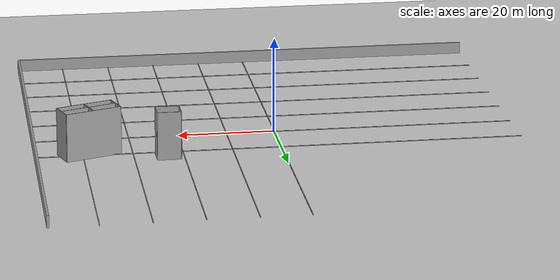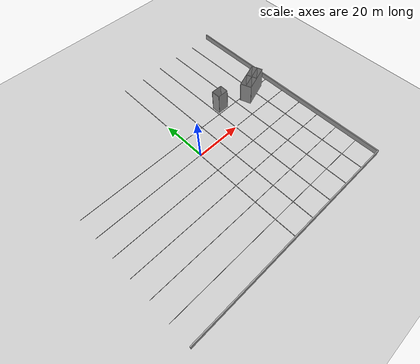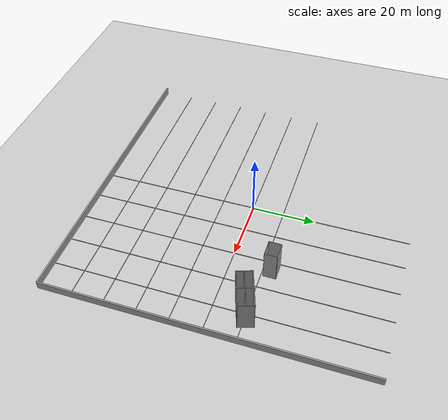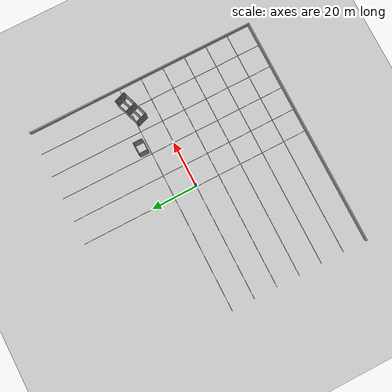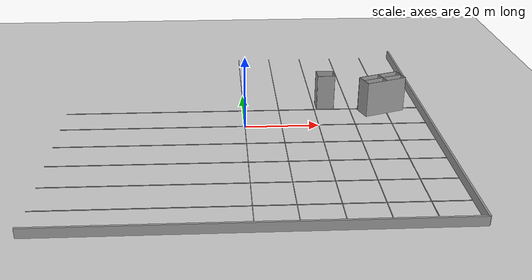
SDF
<sdf version="1.7">
 <world name="default">
  <model name="ground_plane">
   <static>1</static>
   <link name="link">
    <collision name="collision">
     <geometry><plane><normal>0 0 1</normal><size>100 100</size></plane></geometry>
     <surface><friction><ode><mu>100</mu><mu2>50</mu2></ode></friction></surface>
    </collision>
    <visual name="visual">
     <cast_shadows>0</cast_shadows>
     <geometry><plane><normal>0 0 1</normal><size>100 100</size></plane></geometry>
     <material>
      <script><uri>file://media/materials/scripts/gazebo.material</uri><name>Gazebo/Grey</name></script>
     </material>
    </visual>
   </link>
  </model>
  <model name="gridline100m">
   <pose>0.007876 -6.97538 0 0 -0 0</pose>
   <link name="Wall_2">
    <collision name="Wall_2_Collision">
     <geometry><box><size>100 0.15 0.15</size></box></geometry>
     <pose>0 0 0.075 0 -0 0</pose>
    </collision>
    <visual name="Wall_2_Visual">
     <pose>0 0 0.075 0 -0 0</pose>
     <geometry><box><size>100 0.15 0.15</size></box></geometry>
     <material>
      <script><uri>file://media/materials/scripts/gazebo.material</uri><name>Gazebo/Grey</name></script>
      <ambient>0 0 0 1</ambient>
     </material>
     <meta><layer>0</layer></meta>
    </visual>
    <pose>2e-06 -3.05812 0 0 -0 0</pose>
   </link>
   <static>1</static>
  </model>
  <model name="gridline100m_clone">
   <pose>0.013 3.08479 0 0 -0 0</pose>
   <link name="Wall_2">
    <collision name="Wall_2_Collision">
     <geometry><box><size>100 0.15 0.15</size></box></geometry>
     <pose>0 0 0.075 0 -0 0</pose>
    </collision>
    <visual name="Wall_2_Visual">
     <pose>0 0 0.075 0 -0 0</pose>
     <geometry><box><size>100 0.15 0.15</size></box></geometry>
     <material>
      <script><uri>file://media/materials/scripts/gazebo.material</uri><name>Gazebo/Grey</name></script>
      <ambient>0 0 0 1</ambient>
     </material>
     <meta><layer>0</layer></meta>
    </visual>
    <pose>2e-06 -3.05812 0 0 -0 0</pose>
   </link>
   <static>1</static>
  </model>
  <model name="gridline100m_clone_0">
   <pose>-0.011254 13.0129 0 0 -0 0</pose>
   <link name="Wall_2">
    <collision name="Wall_2_Collision">
     <geometry><box><size>100 0.15 0.15</size></box></geometry>
     <pose>0 0 0.075 0 -0 0</pose>
    </collision>
    <visual name="Wall_2_Visual">
     <pose>0 0 0.075 0 -0 0</pose>
     <geometry><box><size>100 0.15 0.15</size></box></geometry>
     <material>
      <script><uri>file://media/materials/scripts/gazebo.material</uri><name>Gazebo/Grey</name></script>
      <ambient>0 0 0 1</ambient>
     </material>
     <meta><layer>0</layer></meta>
    </visual>
    <pose>2e-06 -3.05812 0 0 -0 0</pose>
   </link>
   <static>1</static>
  </model>
  <model name="gridline100m_clone_0_clone">
   <link name="Wall_2">
    <pose>2e-06 -3.05812 0 0 -0 1.571</pose>
    <inertial>
     <mass>1</mass>
     <inertia><ixx>1</ixx><ixy>0</ixy><ixz>0</ixz><iyy>1</iyy><iyz>0</iyz><izz>1</izz></inertia>
    </inertial>
    <visual name="Wall_2_Visual">
     <pose>0 0 0.075 0 -0 0</pose>
     <geometry><box><size>100 0.15 0.15</size></box></geometry>
     <material>
      <script><uri>file://media/materials/scripts/gazebo.material</uri><name>Gazebo/Grey</name></script>
      <ambient>0 0 0 1</ambient>
      <shader type="pixel"><normal_map>__default__</normal_map></shader>
      <diffuse>0.7 0.7 0.7 1</diffuse>
      <specular>0.01 0.01 0.01 1</specular>
      <emissive>0 0 0 1</emissive>
     </material>
     <meta><layer>0</layer></meta>
    </visual>
    <collision name="Wall_2_Collision">
     <pose>0 0 0.075 0 -0 0</pose>
     <geometry><box><size>100 0.15 0.15</size></box></geometry>
     <surface>
      <friction>
       <ode><mu>1</mu><mu2>1</mu2><fdir1>0 0 0</fdir1><slip1>0</slip1><slip2>0</slip2></ode>
       <torsional>
        <coefficient>1</coefficient>
        <patch_radius>0</patch_radius>
        <surface_radius>0</surface_radius>
        <use_patch_radius>1</use_patch_radius>
        <ode><slip>0</slip></ode>
       </torsional>
      </friction>
      <bounce><restitution_coefficient>0</restitution_coefficient><threshold>1e+06</threshold></bounce>
      <contact>
       <collide_without_contact>0</collide_without_contact>
       <collide_without_contact_bitmask>1</collide_without_contact_bitmask>
       <collide_bitmask>1</collide_bitmask>
       <ode>
        <soft_cfm>0</soft_cfm>
        <soft_erp>0.2</soft_erp>
        <kp>1e+13</kp>
        <kd>1</kd>
        <max_vel>0.01</max_vel>
        <min_depth>0</min_depth>
       </ode>
       <bullet>
        <split_impulse>1</split_impulse>
        <split_impulse_penetration_threshold>-0.01</split_impulse_penetration_threshold>
        <soft_cfm>0</soft_cfm>
        <soft_erp>0.2</soft_erp>
        <kp>1e+13</kp>
        <kd>1</kd>
       </bullet>
      </contact>
     </surface>
    </collision>
   </link>
   <static>1</static>
   <pose>9.93727 3.17557 0 0 -0 0</pose>
  </model>
  <model name="gridline100m_clone_0_clone_clone">
   <link name="Wall_2">
    <pose>2e-06 -3.05812 0 0 -0 1.571</pose>
    <inertial>
     <mass>1</mass>
     <inertia><ixx>1</ixx><ixy>0</ixy><ixz>0</ixz><iyy>1</iyy><iyz>0</iyz><izz>1</izz></inertia>
    </inertial>
    <visual name="Wall_2_Visual">
     <pose>0 0 0.075 0 -0 0</pose>
     <geometry><box><size>100 0.15 0.15</size></box></geometry>
     <material>
      <script><uri>file://media/materials/scripts/gazebo.material</uri><name>Gazebo/Grey</name></script>
      <ambient>0 0 0 1</ambient>
      <shader type="pixel"><normal_map>__default__</normal_map></shader>
      <diffuse>0.7 0.7 0.7 1</diffuse>
      <specular>0.01 0.01 0.01 1</specular>
      <emissive>0 0 0 1</emissive>
     </material>
     <meta><layer>0</layer></meta>
    </visual>
    <collision name="Wall_2_Collision">
     <pose>0 0 0.075 0 -0 0</pose>
     <geometry><box><size>100 0.15 0.15</size></box></geometry>
     <surface>
      <friction>
       <ode><mu>1</mu><mu2>1</mu2><fdir1>0 0 0</fdir1><slip1>0</slip1><slip2>0</slip2></ode>
       <torsional>
        <coefficient>1</coefficient>
        <patch_radius>0</patch_radius>
        <surface_radius>0</surface_radius>
        <use_patch_radius>1</use_patch_radius>
        <ode><slip>0</slip></ode>
       </torsional>
      </friction>
      <bounce><restitution_coefficient>0</restitution_coefficient><threshold>1e+06</threshold></bounce>
      <contact>
       <collide_without_contact>0</collide_without_contact>
       <collide_without_contact_bitmask>1</collide_without_contact_bitmask>
       <collide_bitmask>1</collide_bitmask>
       <ode>
        <soft_cfm>0</soft_cfm>
        <soft_erp>0.2</soft_erp>
        <kp>1e+13</kp>
        <kd>1</kd>
        <max_vel>0.01</max_vel>
        <min_depth>0</min_depth>
       </ode>
       <bullet>
        <split_impulse>1</split_impulse>
        <split_impulse_penetration_threshold>-0.01</split_impulse_penetration_threshold>
        <soft_cfm>0</soft_cfm>
        <soft_erp>0.2</soft_erp>
        <kp>1e+13</kp>
        <kd>1</kd>
       </bullet>
      </contact>
     </surface>
    </collision>
   </link>
   <static>1</static>
   <pose>-0.08355 3.18147 0 0 -0 0</pose>
  </model>
  <model name="gridline100m_clone_0_clone_clone_1">
   <link name="Wall_2">
    <pose>2e-06 -3.05812 0 0 -0 1.571</pose>
    <inertial>
     <mass>1</mass>
     <inertia><ixx>1</ixx><ixy>0</ixy><ixz>0</ixz><iyy>1</iyy><iyz>0</iyz><izz>1</izz></inertia>
    </inertial>
    <visual name="Wall_2_Visual">
     <pose>0 0 0.075 0 -0 0</pose>
     <geometry><box><size>100 0.15 0.15</size></box></geometry>
     <material>
      <script><uri>file://media/materials/scripts/gazebo.material</uri><name>Gazebo/Grey</name></script>
      <ambient>0 0 0 1</ambient>
      <shader type="pixel"><normal_map>__default__</normal_map></shader>
      <diffuse>0.7 0.7 0.7 1</diffuse>
      <specular>0.01 0.01 0.01 1</specular>
      <emissive>0 0 0 1</emissive>
     </material>
     <meta><layer>0</layer></meta>
    </visual>
    <collision name="Wall_2_Collision">
     <pose>0 0 0.075 0 -0 0</pose>
     <geometry><box><size>100 0.15 0.15</size></box></geometry>
     <surface>
      <friction>
       <ode><mu>1</mu><mu2>1</mu2><fdir1>0 0 0</fdir1><slip1>0</slip1><slip2>0</slip2></ode>
       <torsional>
        <coefficient>1</coefficient>
        <patch_radius>0</patch_radius>
        <surface_radius>0</surface_radius>
        <use_patch_radius>1</use_patch_radius>
        <ode><slip>0</slip></ode>
       </torsional>
      </friction>
      <bounce><restitution_coefficient>0</restitution_coefficient><threshold>1e+06</threshold></bounce>
      <contact>
       <collide_without_contact>0</collide_without_contact>
       <collide_without_contact_bitmask>1</collide_without_contact_bitmask>
       <collide_bitmask>1</collide_bitmask>
       <ode>
        <soft_cfm>0</soft_cfm>
        <soft_erp>0.2</soft_erp>
        <kp>1e+13</kp>
        <kd>1</kd>
        <max_vel>0.01</max_vel>
        <min_depth>0</min_depth>
       </ode>
       <bullet>
        <split_impulse>1</split_impulse>
        <split_impulse_penetration_threshold>-0.01</split_impulse_penetration_threshold>
        <soft_cfm>0</soft_cfm>
        <soft_erp>0.2</soft_erp>
        <kp>1e+13</kp>
        <kd>1</kd>
       </bullet>
      </contact>
     </surface>
    </collision>
   </link>
   <static>1</static>
   <pose>20.1147 3.10463 0 0 -0 0</pose>
  </model>
  <model name="gridline100m_clone_0_clone_clone_1_clone">
   <link name="Wall_2">
    <pose>2e-06 -3.05812 0 0 -0 1.571</pose>
    <inertial>
     <mass>1</mass>
     <inertia><ixx>1</ixx><ixy>0</ixy><ixz>0</ixz><iyy>1</iyy><iyz>0</iyz><izz>1</izz></inertia>
    </inertial>
    <visual name="Wall_2_Visual">
     <pose>0 0 0.075 0 -0 0</pose>
     <geometry><box><size>100 0.15 0.15</size></box></geometry>
     <material>
      <script><uri>file://media/materials/scripts/gazebo.material</uri><name>Gazebo/Grey</name></script>
      <ambient>0 0 0 1</ambient>
      <shader type="pixel"><normal_map>__default__</normal_map></shader>
      <diffuse>0.7 0.7 0.7 1</diffuse>
      <specular>0.01 0.01 0.01 1</specular>
      <emissive>0 0 0 1</emissive>
     </material>
     <meta><layer>0</layer></meta>
    </visual>
    <collision name="Wall_2_Collision">
     <pose>0 0 0.075 0 -0 0</pose>
     <geometry><box><size>100 0.15 0.15</size></box></geometry>
     <surface>
      <friction>
       <ode><mu>1</mu><mu2>1</mu2><fdir1>0 0 0</fdir1><slip1>0</slip1><slip2>0</slip2></ode>
       <torsional>
        <coefficient>1</coefficient>
        <patch_radius>0</patch_radius>
        <surface_radius>0</surface_radius>
        <use_patch_radius>1</use_patch_radius>
        <ode><slip>0</slip></ode>
       </torsional>
      </friction>
      <bounce><restitution_coefficient>0</restitution_coefficient><threshold>1e+06</threshold></bounce>
      <contact>
       <collide_without_contact>0</collide_without_contact>
       <collide_without_contact_bitmask>1</collide_without_contact_bitmask>
       <collide_bitmask>1</collide_bitmask>
       <ode>
        <soft_cfm>0</soft_cfm>
        <soft_erp>0.2</soft_erp>
        <kp>1e+13</kp>
        <kd>1</kd>
        <max_vel>0.01</max_vel>
        <min_depth>0</min_depth>
       </ode>
       <bullet>
        <split_impulse>1</split_impulse>
        <split_impulse_penetration_threshold>-0.01</split_impulse_penetration_threshold>
        <soft_cfm>0</soft_cfm>
        <soft_erp>0.2</soft_erp>
        <kp>1e+13</kp>
        <kd>1</kd>
       </bullet>
      </contact>
     </surface>
    </collision>
   </link>
   <static>1</static>
   <pose>30.2145 3.13489 0 0 -0 0</pose>
  </model>
  <model name="gridline100m_clone_0_clone_clone_1_clone_clone">
   <link name="Wall_2">
    <pose>2e-06 -3.05812 0 0 -0 1.571</pose>
    <inertial>
     <mass>1</mass>
     <inertia><ixx>1</ixx><ixy>0</ixy><ixz>0</ixz><iyy>1</iyy><iyz>0</iyz><izz>1</izz></inertia>
    </inertial>
    <visual name="Wall_2_Visual">
     <pose>0 0 0.075 0 -0 0</pose>
     <geometry><box><size>100 0.15 0.15</size></box></geometry>
     <material>
      <script><uri>file://media/materials/scripts/gazebo.material</uri><name>Gazebo/Grey</name></script>
      <ambient>0 0 0 1</ambient>
      <shader type="pixel"><normal_map>__default__</normal_map></shader>
      <diffuse>0.7 0.7 0.7 1</diffuse>
      <specular>0.01 0.01 0.01 1</specular>
      <emissive>0 0 0 1</emissive>
     </material>
     <meta><layer>0</layer></meta>
    </visual>
    <collision name="Wall_2_Collision">
     <pose>0 0 0.075 0 -0 0</pose>
     <geometry><box><size>100 0.15 0.15</size></box></geometry>
     <surface>
      <friction>
       <ode><mu>1</mu><mu2>1</mu2><fdir1>0 0 0</fdir1><slip1>0</slip1><slip2>0</slip2></ode>
       <torsional>
        <coefficient>1</coefficient>
        <patch_radius>0</patch_radius>
        <surface_radius>0</surface_radius>
        <use_patch_radius>1</use_patch_radius>
        <ode><slip>0</slip></ode>
       </torsional>
      </friction>
      <bounce><restitution_coefficient>0</restitution_coefficient><threshold>1e+06</threshold></bounce>
      <contact>
       <collide_without_contact>0</collide_without_contact>
       <collide_without_contact_bitmask>1</collide_without_contact_bitmask>
       <collide_bitmask>1</collide_bitmask>
       <ode>
        <soft_cfm>0</soft_cfm>
        <soft_erp>0.2</soft_erp>
        <kp>1e+13</kp>
        <kd>1</kd>
        <max_vel>0.01</max_vel>
        <min_depth>0</min_depth>
       </ode>
       <bullet>
        <split_impulse>1</split_impulse>
        <split_impulse_penetration_threshold>-0.01</split_impulse_penetration_threshold>
        <soft_cfm>0</soft_cfm>
        <soft_erp>0.2</soft_erp>
        <kp>1e+13</kp>
        <kd>1</kd>
       </bullet>
      </contact>
     </surface>
    </collision>
   </link>
   <static>1</static>
   <pose>40.3256 3.07649 0 0 -0 0</pose>
  </model>
  <model name="gridline100m_clone_1">
   <pose>-0.046986 -16.9532 0 0 -0 0</pose>
   <link name="Wall_2">
    <collision name="Wall_2_Collision">
     <geometry><box><size>100 0.15 0.15</size></box></geometry>
     <pose>0 0 0.075 0 -0 0</pose>
    </collision>
    <visual name="Wall_2_Visual">
     <pose>0 0 0.075 0 -0 0</pose>
     <geometry><box><size>100 0.15 0.15</size></box></geometry>
     <material>
      <script><uri>file://media/materials/scripts/gazebo.material</uri><name>Gazebo/Grey</name></script>
      <ambient>0 0 0 1</ambient>
     </material>
     <meta><layer>0</layer></meta>
    </visual>
    <pose>2e-06 -3.05812 0 0 -0 0</pose>
   </link>
   <static>1</static>
  </model>
  <model name="gridline100m_clone_1_clone">
   <pose>0.0391 -26.9723 0 0 -0 0</pose>
   <link name="Wall_2">
    <collision name="Wall_2_Collision">
     <geometry><box><size>100 0.15 0.15</size></box></geometry>
     <pose>0 0 0.075 0 -0 0</pose>
    </collision>
    <visual name="Wall_2_Visual">
     <pose>0 0 0.075 0 -0 0</pose>
     <geometry><box><size>100 0.15 0.15</size></box></geometry>
     <material>
      <script><uri>file://media/materials/scripts/gazebo.material</uri><name>Gazebo/Grey</name></script>
      <ambient>0 0 0 1</ambient>
     </material>
     <meta><layer>0</layer></meta>
    </visual>
    <pose>2e-06 -3.05812 0 0 -0 0</pose>
   </link>
   <static>1</static>
  </model>
  <model name="gridline100m_clone_1_clone_clone">
   <pose>-0.033098 -36.9108 0 0 -0 0</pose>
   <link name="Wall_2">
    <collision name="Wall_2_Collision">
     <geometry><box><size>100 0.15 0.15</size></box></geometry>
     <pose>0 0 0.075 0 -0 0</pose>
    </collision>
    <visual name="Wall_2_Visual">
     <pose>0 0 0.075 0 -0 0</pose>
     <geometry><box><size>100 0.15 0.15</size></box></geometry>
     <material>
      <script><uri>file://media/materials/scripts/gazebo.material</uri><name>Gazebo/Grey</name></script>
      <ambient>0 0 0 1</ambient>
     </material>
     <meta><layer>0</layer></meta>
    </visual>
    <pose>2e-06 -3.05812 0 0 -0 0</pose>
   </link>
   <static>1</static>
  </model>
  <model name="building1_clone_0_clone_1">
   <link name="Wall_12">
    <pose>-1.19 -3.2645 0 0 -0 0</pose>
    <inertial>
     <mass>1</mass>
     <inertia><ixx>1</ixx><ixy>0</ixy><ixz>0</ixz><iyy>1</iyy><iyz>0</iyz><izz>1</izz></inertia>
    </inertial>
    <visual name="Wall_12_Visual">
     <pose>0 0 5 0 -0 0</pose>
     <geometry><box><size>5 0.15 10</size></box></geometry>
     <material>
      <script><uri>file://media/materials/scripts/gazebo.material</uri><name>Gazebo/Grey</name></script>
      <ambient>0.5 0.5 0.5 1</ambient>
      <shader type="pixel"><normal_map>__default__</normal_map></shader>
      <diffuse>0.5 0.5 0.5 1</diffuse>
      <specular>0.5 0.5 0.5 1</specular>
      <emissive>0 0 0 1</emissive>
     </material>
     <meta><layer>0</layer></meta>
    </visual>
    <collision name="Wall_12_Collision">
     <pose>0 0 5 0 -0 0</pose>
     <geometry><box><size>5 0.15 10</size></box></geometry>
     <surface>
      <friction>
       <ode><mu>1</mu><mu2>1</mu2><fdir1>0 0 0</fdir1><slip1>0</slip1><slip2>0</slip2></ode>
       <torsional>
        <coefficient>1</coefficient>
        <patch_radius>0</patch_radius>
        <surface_radius>0</surface_radius>
        <use_patch_radius>1</use_patch_radius>
        <ode><slip>0</slip></ode>
       </torsional>
      </friction>
      <bounce><restitution_coefficient>0</restitution_coefficient><threshold>1e+06</threshold></bounce>
      <contact>
       <collide_without_contact>0</collide_without_contact>
       <collide_without_contact_bitmask>1</collide_without_contact_bitmask>
       <collide_bitmask>1</collide_bitmask>
       <ode>
        <soft_cfm>0</soft_cfm>
        <soft_erp>0.2</soft_erp>
        <kp>1e+13</kp>
        <kd>1</kd>
        <max_vel>0.01</max_vel>
        <min_depth>0</min_depth>
       </ode>
       <bullet>
        <split_impulse>1</split_impulse>
        <split_impulse_penetration_threshold>-0.01</split_impulse_penetration_threshold>
        <soft_cfm>0</soft_cfm>
        <soft_erp>0.2</soft_erp>
        <kp>1e+13</kp>
        <kd>1</kd>
       </bullet>
      </contact>
     </surface>
    </collision>
   </link>
   <link name="Wall_13">
    <pose>1.235 -1.3395 0 0 -0 1.5708</pose>
    <inertial>
     <mass>1</mass>
     <inertia><ixx>1</ixx><ixy>0</ixy><ixz>0</ixz><iyy>1</iyy><iyz>0</iyz><izz>1</izz></inertia>
    </inertial>
    <visual name="Wall_13_Visual">
     <pose>0 0 5 0 -0 0</pose>
     <geometry><box><size>4 0.15 10</size></box></geometry>
     <material>
      <script><uri>file://media/materials/scripts/gazebo.material</uri><name>Gazebo/Grey</name></script>
      <ambient>0.5 0.5 0.5 1</ambient>
      <shader type="pixel"><normal_map>__default__</normal_map></shader>
      <diffuse>0.5 0.5 0.5 1</diffuse>
      <specular>0.5 0.5 0.5 1</specular>
      <emissive>0 0 0 1</emissive>
     </material>
     <meta><layer>0</layer></meta>
    </visual>
    <collision name="Wall_13_Collision">
     <pose>0 0 5 0 -0 0</pose>
     <geometry><box><size>4 0.15 10</size></box></geometry>
     <surface>
      <friction>
       <ode><mu>1</mu><mu2>1</mu2><fdir1>0 0 0</fdir1><slip1>0</slip1><slip2>0</slip2></ode>
       <torsional>
        <coefficient>1</coefficient>
        <patch_radius>0</patch_radius>
        <surface_radius>0</surface_radius>
        <use_patch_radius>1</use_patch_radius>
        <ode><slip>0</slip></ode>
       </torsional>
      </friction>
      <bounce><restitution_coefficient>0</restitution_coefficient><threshold>1e+06</threshold></bounce>
      <contact>
       <collide_without_contact>0</collide_without_contact>
       <collide_without_contact_bitmask>1</collide_without_contact_bitmask>
       <collide_bitmask>1</collide_bitmask>
       <ode>
        <soft_cfm>0</soft_cfm>
        <soft_erp>0.2</soft_erp>
        <kp>1e+13</kp>
        <kd>1</kd>
        <max_vel>0.01</max_vel>
        <min_depth>0</min_depth>
       </ode>
       <bullet>
        <split_impulse>1</split_impulse>
        <split_impulse_penetration_threshold>-0.01</split_impulse_penetration_threshold>
        <soft_cfm>0</soft_cfm>
        <soft_erp>0.2</soft_erp>
        <kp>1e+13</kp>
        <kd>1</kd>
       </bullet>
      </contact>
     </surface>
    </collision>
   </link>
   <link name="Wall_15">
    <pose>-1.19 0.5855 0 0 -0 3.14159</pose>
    <inertial>
     <mass>1</mass>
     <inertia><ixx>1</ixx><ixy>0</ixy><ixz>0</ixz><iyy>1</iyy><iyz>0</iyz><izz>1</izz></inertia>
    </inertial>
    <visual name="Wall_15_Visual">
     <pose>0 0 5 0 -0 0</pose>
     <geometry><box><size>5 0.15 10</size></box></geometry>
     <material>
      <script><uri>file://media/materials/scripts/gazebo.material</uri><name>Gazebo/Grey</name></script>
      <ambient>0.5 0.5 0.5 1</ambient>
      <shader type="pixel"><normal_map>__default__</normal_map></shader>
      <diffuse>0.5 0.5 0.5 1</diffuse>
      <specular>0.5 0.5 0.5 1</specular>
      <emissive>0 0 0 1</emissive>
     </material>
     <meta><layer>0</layer></meta>
    </visual>
    <collision name="Wall_15_Collision">
     <pose>0 0 5 0 -0 0</pose>
     <geometry><box><size>5 0.15 10</size></box></geometry>
     <surface>
      <friction>
       <ode><mu>1</mu><mu2>1</mu2><fdir1>0 0 0</fdir1><slip1>0</slip1><slip2>0</slip2></ode>
       <torsional>
        <coefficient>1</coefficient>
        <patch_radius>0</patch_radius>
        <surface_radius>0</surface_radius>
        <use_patch_radius>1</use_patch_radius>
        <ode><slip>0</slip></ode>
       </torsional>
      </friction>
      <bounce><restitution_coefficient>0</restitution_coefficient><threshold>1e+06</threshold></bounce>
      <contact>
       <collide_without_contact>0</collide_without_contact>
       <collide_without_contact_bitmask>1</collide_without_contact_bitmask>
       <collide_bitmask>1</collide_bitmask>
       <ode>
        <soft_cfm>0</soft_cfm>
        <soft_erp>0.2</soft_erp>
        <kp>1e+13</kp>
        <kd>1</kd>
        <max_vel>0.01</max_vel>
        <min_depth>0</min_depth>
       </ode>
       <bullet>
        <split_impulse>1</split_impulse>
        <split_impulse_penetration_threshold>-0.01</split_impulse_penetration_threshold>
        <soft_cfm>0</soft_cfm>
        <soft_erp>0.2</soft_erp>
        <kp>1e+13</kp>
        <kd>1</kd>
       </bullet>
      </contact>
     </surface>
    </collision>
   </link>
   <link name="Wall_16">
    <pose>-3.615 -1.3395 0 0 0 -1.5708</pose>
    <inertial>
     <mass>1</mass>
     <inertia><ixx>1</ixx><ixy>0</ixy><ixz>0</ixz><iyy>1</iyy><iyz>0</iyz><izz>1</izz></inertia>
    </inertial>
    <visual name="Wall_16_Visual">
     <pose>0 0 5 0 -0 0</pose>
     <geometry><box><size>4 0.15 10</size></box></geometry>
     <material>
      <script><uri>file://media/materials/scripts/gazebo.material</uri><name>Gazebo/Grey</name></script>
      <ambient>0.5 0.5 0.5 1</ambient>
      <shader type="pixel"><normal_map>__default__</normal_map></shader>
      <diffuse>0.5 0.5 0.5 1</diffuse>
      <specular>0.5 0.5 0.5 1</specular>
      <emissive>0 0 0 1</emissive>
     </material>
     <meta><layer>0</layer></meta>
    </visual>
    <collision name="Wall_16_Collision">
     <pose>0 0 5 0 -0 0</pose>
     <geometry><box><size>4 0.15 10</size></box></geometry>
     <surface>
      <friction>
       <ode><mu>1</mu><mu2>1</mu2><fdir1>0 0 0</fdir1><slip1>0</slip1><slip2>0</slip2></ode>
       <torsional>
        <coefficient>1</coefficient>
        <patch_radius>0</patch_radius>
        <surface_radius>0</surface_radius>
        <use_patch_radius>1</use_patch_radius>
        <ode><slip>0</slip></ode>
       </torsional>
      </friction>
      <bounce><restitution_coefficient>0</restitution_coefficient><threshold>1e+06</threshold></bounce>
      <contact>
       <collide_without_contact>0</collide_without_contact>
       <collide_without_contact_bitmask>1</collide_without_contact_bitmask>
       <collide_bitmask>1</collide_bitmask>
       <ode>
        <soft_cfm>0</soft_cfm>
        <soft_erp>0.2</soft_erp>
        <kp>1e+13</kp>
        <kd>1</kd>
        <max_vel>0.01</max_vel>
        <min_depth>0</min_depth>
       </ode>
       <bullet>
        <split_impulse>1</split_impulse>
        <split_impulse_penetration_threshold>-0.01</split_impulse_penetration_threshold>
        <soft_cfm>0</soft_cfm>
        <soft_erp>0.2</soft_erp>
        <kp>1e+13</kp>
        <kd>1</kd>
       </bullet>
      </contact>
     </surface>
    </collision>
   </link>
   <static>1</static>
   <pose>24.4756 13.9221 0 0 -0 0</pose>
  </model>
  <model name="building5_clone_clone_clone">
   <link name="Wall_64">
    <pose>-1e-06 -4.8275 0 0 -0 0</pose>
    <inertial>
     <mass>1</mass>
     <inertia><ixx>1</ixx><ixy>0</ixy><ixz>0</ixz><iyy>1</iyy><iyz>0</iyz><izz>1</izz></inertia>
    </inertial>
    <visual name="Wall_64_Visual">
     <pose>0 0 5 0 -0 0</pose>
     <geometry><box><size>12 0.15 10</size></box></geometry>
     <material>
      <script><uri>file://media/materials/scripts/gazebo.material</uri><name>Gazebo/Grey</name></script>
      <ambient>0.5 0.5 0.5 1</ambient>
      <shader type="pixel"><normal_map>__default__</normal_map></shader>
      <diffuse>0.5 0.5 0.5 1</diffuse>
      <specular>0.5 0.5 0.5 1</specular>
      <emissive>0 0 0 1</emissive>
     </material>
     <meta><layer>0</layer></meta>
    </visual>
    <collision name="Wall_64_Collision">
     <pose>0 0 5 0 -0 0</pose>
     <geometry><box><size>12 0.15 10</size></box></geometry>
     <surface>
      <friction>
       <ode><mu>1</mu><mu2>1</mu2><fdir1>0 0 0</fdir1><slip1>0</slip1><slip2>0</slip2></ode>
       <torsional>
        <coefficient>1</coefficient>
        <patch_radius>0</patch_radius>
        <surface_radius>0</surface_radius>
        <use_patch_radius>1</use_patch_radius>
        <ode><slip>0</slip></ode>
       </torsional>
      </friction>
      <bounce><restitution_coefficient>0</restitution_coefficient><threshold>1e+06</threshold></bounce>
      <contact>
       <collide_without_contact>0</collide_without_contact>
       <collide_without_contact_bitmask>1</collide_without_contact_bitmask>
       <collide_bitmask>1</collide_bitmask>
       <ode>
        <soft_cfm>0</soft_cfm>
        <soft_erp>0.2</soft_erp>
        <kp>1e+13</kp>
        <kd>1</kd>
        <max_vel>0.01</max_vel>
        <min_depth>0</min_depth>
       </ode>
       <bullet>
        <split_impulse>1</split_impulse>
        <split_impulse_penetration_threshold>-0.01</split_impulse_penetration_threshold>
        <soft_cfm>0</soft_cfm>
        <soft_erp>0.2</soft_erp>
        <kp>1e+13</kp>
        <kd>1</kd>
       </bullet>
      </contact>
     </surface>
    </collision>
   </link>
   <link name="Wall_65">
    <pose>5.925 -2.4025 0 0 -0 1.5708</pose>
    <inertial>
     <mass>1</mass>
     <inertia><ixx>1</ixx><ixy>0</ixy><ixz>0</ixz><iyy>1</iyy><iyz>0</iyz><izz>1</izz></inertia>
    </inertial>
    <visual name="Wall_65_Visual">
     <pose>0 0 5 0 -0 0</pose>
     <geometry><box><size>5 0.15 10</size></box></geometry>
     <material>
      <script><uri>file://media/materials/scripts/gazebo.material</uri><name>Gazebo/Grey</name></script>
      <ambient>0.5 0.5 0.5 1</ambient>
      <shader type="pixel"><normal_map>__default__</normal_map></shader>
      <diffuse>0.5 0.5 0.5 1</diffuse>
      <specular>0.5 0.5 0.5 1</specular>
      <emissive>0 0 0 1</emissive>
     </material>
     <meta><layer>0</layer></meta>
    </visual>
    <collision name="Wall_65_Collision">
     <pose>0 0 5 0 -0 0</pose>
     <geometry><box><size>5 0.15 10</size></box></geometry>
     <surface>
      <friction>
       <ode><mu>1</mu><mu2>1</mu2><fdir1>0 0 0</fdir1><slip1>0</slip1><slip2>0</slip2></ode>
       <torsional>
        <coefficient>1</coefficient>
        <patch_radius>0</patch_radius>
        <surface_radius>0</surface_radius>
        <use_patch_radius>1</use_patch_radius>
        <ode><slip>0</slip></ode>
       </torsional>
      </friction>
      <bounce><restitution_coefficient>0</restitution_coefficient><threshold>1e+06</threshold></bounce>
      <contact>
       <collide_without_contact>0</collide_without_contact>
       <collide_without_contact_bitmask>1</collide_without_contact_bitmask>
       <collide_bitmask>1</collide_bitmask>
       <ode>
        <soft_cfm>0</soft_cfm>
        <soft_erp>0.2</soft_erp>
        <kp>1e+13</kp>
        <kd>1</kd>
        <max_vel>0.01</max_vel>
        <min_depth>0</min_depth>
       </ode>
       <bullet>
        <split_impulse>1</split_impulse>
        <split_impulse_penetration_threshold>-0.01</split_impulse_penetration_threshold>
        <soft_cfm>0</soft_cfm>
        <soft_erp>0.2</soft_erp>
        <kp>1e+13</kp>
        <kd>1</kd>
       </bullet>
      </contact>
     </surface>
    </collision>
   </link>
   <link name="Wall_66">
    <pose>0 0.0225 0 0 -0 3.14159</pose>
    <inertial>
     <mass>1</mass>
     <inertia><ixx>1</ixx><ixy>0</ixy><ixz>0</ixz><iyy>1</iyy><iyz>0</iyz><izz>1</izz></inertia>
    </inertial>
    <visual name="Wall_66_Visual">
     <pose>0 0 5 0 -0 0</pose>
     <geometry><box><size>12 0.15 10</size></box></geometry>
     <material>
      <script><uri>file://media/materials/scripts/gazebo.material</uri><name>Gazebo/Grey</name></script>
      <ambient>0.5 0.5 0.5 1</ambient>
      <shader type="pixel"><normal_map>__default__</normal_map></shader>
      <diffuse>0.5 0.5 0.5 1</diffuse>
      <specular>0.5 0.5 0.5 1</specular>
      <emissive>0 0 0 1</emissive>
     </material>
     <meta><layer>0</layer></meta>
    </visual>
    <collision name="Wall_66_Collision">
     <pose>0 0 5 0 -0 0</pose>
     <geometry><box><size>12 0.15 10</size></box></geometry>
     <surface>
      <friction>
       <ode><mu>1</mu><mu2>1</mu2><fdir1>0 0 0</fdir1><slip1>0</slip1><slip2>0</slip2></ode>
       <torsional>
        <coefficient>1</coefficient>
        <patch_radius>0</patch_radius>
        <surface_radius>0</surface_radius>
        <use_patch_radius>1</use_patch_radius>
        <ode><slip>0</slip></ode>
       </torsional>
      </friction>
      <bounce><restitution_coefficient>0</restitution_coefficient><threshold>1e+06</threshold></bounce>
      <contact>
       <collide_without_contact>0</collide_without_contact>
       <collide_without_contact_bitmask>1</collide_without_contact_bitmask>
       <collide_bitmask>1</collide_bitmask>
       <ode>
        <soft_cfm>0</soft_cfm>
        <soft_erp>0.2</soft_erp>
        <kp>1e+13</kp>
        <kd>1</kd>
        <max_vel>0.01</max_vel>
        <min_depth>0</min_depth>
       </ode>
       <bullet>
        <split_impulse>1</split_impulse>
        <split_impulse_penetration_threshold>-0.01</split_impulse_penetration_threshold>
        <soft_cfm>0</soft_cfm>
        <soft_erp>0.2</soft_erp>
        <kp>1e+13</kp>
        <kd>1</kd>
       </bullet>
      </contact>
     </surface>
    </collision>
   </link>
   <link name="Wall_67">
    <pose>-5.925 -2.4025 0 0 0 -1.5708</pose>
    <inertial>
     <mass>1</mass>
     <inertia><ixx>1</ixx><ixy>0</ixy><ixz>0</ixz><iyy>1</iyy><iyz>0</iyz><izz>1</izz></inertia>
    </inertial>
    <visual name="Wall_67_Visual">
     <pose>0 0 5 0 -0 0</pose>
     <geometry><box><size>5 0.15 10</size></box></geometry>
     <material>
      <script><uri>file://media/materials/scripts/gazebo.material</uri><name>Gazebo/Grey</name></script>
      <ambient>0.5 0.5 0.5 1</ambient>
      <shader type="pixel"><normal_map>__default__</normal_map></shader>
      <diffuse>0.5 0.5 0.5 1</diffuse>
      <specular>0.5 0.5 0.5 1</specular>
      <emissive>0 0 0 1</emissive>
     </material>
     <meta><layer>0</layer></meta>
    </visual>
    <collision name="Wall_67_Collision">
     <pose>0 0 5 0 -0 0</pose>
     <geometry><box><size>5 0.15 10</size></box></geometry>
     <surface>
      <friction>
       <ode><mu>1</mu><mu2>1</mu2><fdir1>0 0 0</fdir1><slip1>0</slip1><slip2>0</slip2></ode>
       <torsional>
        <coefficient>1</coefficient>
        <patch_radius>0</patch_radius>
        <surface_radius>0</surface_radius>
        <use_patch_radius>1</use_patch_radius>
        <ode><slip>0</slip></ode>
       </torsional>
      </friction>
      <bounce><restitution_coefficient>0</restitution_coefficient><threshold>1e+06</threshold></bounce>
      <contact>
       <collide_without_contact>0</collide_without_contact>
       <collide_without_contact_bitmask>1</collide_without_contact_bitmask>
       <collide_bitmask>1</collide_bitmask>
       <ode>
        <soft_cfm>0</soft_cfm>
        <soft_erp>0.2</soft_erp>
        <kp>1e+13</kp>
        <kd>1</kd>
        <max_vel>0.01</max_vel>
        <min_depth>0</min_depth>
       </ode>
       <bullet>
        <split_impulse>1</split_impulse>
        <split_impulse_penetration_threshold>-0.01</split_impulse_penetration_threshold>
        <soft_cfm>0</soft_cfm>
        <soft_erp>0.2</soft_erp>
        <kp>1e+13</kp>
        <kd>1</kd>
       </bullet>
      </contact>
     </surface>
    </collision>
   </link>
   <link name="Wall_69">
    <pose>0 -2.3885 0 0 0 -1.5708</pose>
    <inertial>
     <mass>1</mass>
     <inertia><ixx>1</ixx><ixy>0</ixy><ixz>0</ixz><iyy>1</iyy><iyz>0</iyz><izz>1</izz></inertia>
    </inertial>
    <visual name="Wall_69_Visual">
     <pose>0 0 5 0 -0 0</pose>
     <geometry><box><size>4.9 0.15 10</size></box></geometry>
     <material>
      <script><uri>file://media/materials/scripts/gazebo.material</uri><name>Gazebo/Grey</name></script>
      <ambient>0.5 0.5 0.5 1</ambient>
      <shader type="pixel"><normal_map>__default__</normal_map></shader>
      <diffuse>0.5 0.5 0.5 1</diffuse>
      <specular>0.5 0.5 0.5 1</specular>
      <emissive>0 0 0 1</emissive>
     </material>
     <meta><layer>0</layer></meta>
    </visual>
    <collision name="Wall_69_Collision">
     <pose>0 0 5 0 -0 0</pose>
     <geometry><box><size>4.9 0.15 10</size></box></geometry>
     <surface>
      <friction>
       <ode><mu>1</mu><mu2>1</mu2><fdir1>0 0 0</fdir1><slip1>0</slip1><slip2>0</slip2></ode>
       <torsional>
        <coefficient>1</coefficient>
        <patch_radius>0</patch_radius>
        <surface_radius>0</surface_radius>
        <use_patch_radius>1</use_patch_radius>
        <ode><slip>0</slip></ode>
       </torsional>
      </friction>
      <bounce><restitution_coefficient>0</restitution_coefficient><threshold>1e+06</threshold></bounce>
      <contact>
       <collide_without_contact>0</collide_without_contact>
       <collide_without_contact_bitmask>1</collide_without_contact_bitmask>
       <collide_bitmask>1</collide_bitmask>
       <ode>
        <soft_cfm>0</soft_cfm>
        <soft_erp>0.2</soft_erp>
        <kp>1e+13</kp>
        <kd>1</kd>
        <max_vel>0.01</max_vel>
        <min_depth>0</min_depth>
       </ode>
       <bullet>
        <split_impulse>1</split_impulse>
        <split_impulse_penetration_threshold>-0.01</split_impulse_penetration_threshold>
        <soft_cfm>0</soft_cfm>
        <soft_erp>0.2</soft_erp>
        <kp>1e+13</kp>
        <kd>1</kd>
       </bullet>
      </contact>
     </surface>
    </collision>
   </link>
   <link name="Wall_74">
    <pose>-0.024 -2.4605 0 0 -0 0</pose>
    <inertial>
     <mass>1</mass>
     <inertia><ixx>1</ixx><ixy>0</ixy><ixz>0</ixz><iyy>1</iyy><iyz>0</iyz><izz>1</izz></inertia>
    </inertial>
    <visual name="Wall_74_Visual">
     <pose>0 0 5 0 -0 0</pose>
     <geometry><box><size>11.9 0.15 10</size></box></geometry>
     <material>
      <script><uri>file://media/materials/scripts/gazebo.material</uri><name>Gazebo/Grey</name></script>
      <ambient>0.5 0.5 0.5 1</ambient>
      <shader type="pixel"><normal_map>__default__</normal_map></shader>
      <diffuse>0.5 0.5 0.5 1</diffuse>
      <specular>0.5 0.5 0.5 1</specular>
      <emissive>0 0 0 1</emissive>
     </material>
     <meta><layer>0</layer></meta>
    </visual>
    <collision name="Wall_74_Collision">
     <pose>0 0 5 0 -0 0</pose>
     <geometry><box><size>11.9 0.15 10</size></box></geometry>
     <surface>
      <friction>
       <ode><mu>1</mu><mu2>1</mu2><fdir1>0 0 0</fdir1><slip1>0</slip1><slip2>0</slip2></ode>
       <torsional>
        <coefficient>1</coefficient>
        <patch_radius>0</patch_radius>
        <surface_radius>0</surface_radius>
        <use_patch_radius>1</use_patch_radius>
        <ode><slip>0</slip></ode>
       </torsional>
      </friction>
      <bounce><restitution_coefficient>0</restitution_coefficient><threshold>1e+06</threshold></bounce>
      <contact>
       <collide_without_contact>0</collide_without_contact>
       <collide_without_contact_bitmask>1</collide_without_contact_bitmask>
       <collide_bitmask>1</collide_bitmask>
       <ode>
        <soft_cfm>0</soft_cfm>
        <soft_erp>0.2</soft_erp>
        <kp>1e+13</kp>
        <kd>1</kd>
        <max_vel>0.01</max_vel>
        <min_depth>0</min_depth>
       </ode>
       <bullet>
        <split_impulse>1</split_impulse>
        <split_impulse_penetration_threshold>-0.01</split_impulse_penetration_threshold>
        <soft_cfm>0</soft_cfm>
        <soft_erp>0.2</soft_erp>
        <kp>1e+13</kp>
        <kd>1</kd>
       </bullet>
      </contact>
     </surface>
    </collision>
   </link>
   <static>1</static>
   <pose>38.1265 11.3345 0 0 -0 0.337415</pose>
  </model>
  <model name="100mfence_clone_clone_clone">
   <link name="Wall_0">
    <pose>-13.0161 -13.4589 0 0 -0 1.571</pose>
    <inertial>
     <mass>75000</mass>
     <inertia>
      <ixx>39203.1</ixx>
      <ixy>0</ixy>
      <ixz>0</ixz>
      <iyy>6.25391e+07</iyy>
      <iyz>0</iyz>
      <izz>6.25001e+07</izz>
     </inertia>
    </inertial>
    <visual name="Wall_0_Visual">
     <pose>0 0 1.25 0 -0 0</pose>
     <geometry><box><size>100 0.5 2.5</size></box></geometry>
     <material>
      <script><uri>file://media/materials/scripts/gazebo.material</uri><name>Gazebo/Grey</name></script>
      <ambient>0.5 0.5 0.5 1</ambient>
      <shader type="pixel"><normal_map>__default__</normal_map></shader>
      <diffuse>0.5 0.5 0.5 1</diffuse>
      <specular>0.5 0.5 0.5 1</specular>
      <emissive>0 0 0 1</emissive>
     </material>
     <meta><layer>0</layer></meta>
    </visual>
    <collision name="Wall_0_Collision">
     <pose>0 0 1.25 0 -0 0</pose>
     <geometry><box><size>100 0.2 2.5</size></box></geometry>
     <surface>
      <friction>
       <ode><mu>1</mu><mu2>1</mu2><fdir1>0 0 0</fdir1><slip1>0</slip1><slip2>0</slip2></ode>
       <torsional>
        <coefficient>1</coefficient>
        <patch_radius>0</patch_radius>
        <surface_radius>0</surface_radius>
        <use_patch_radius>1</use_patch_radius>
        <ode><slip>0</slip></ode>
       </torsional>
      </friction>
      <bounce><restitution_coefficient>0</restitution_coefficient><threshold>1e+06</threshold></bounce>
      <contact>
       <collide_without_contact>0</collide_without_contact>
       <collide_without_contact_bitmask>1</collide_without_contact_bitmask>
       <collide_bitmask>1</collide_bitmask>
       <ode>
        <soft_cfm>0</soft_cfm>
        <soft_erp>0.2</soft_erp>
        <kp>1e+13</kp>
        <kd>1</kd>
        <max_vel>0.01</max_vel>
        <min_depth>0</min_depth>
       </ode>
       <bullet>
        <split_impulse>1</split_impulse>
        <split_impulse_penetration_threshold>-0.01</split_impulse_penetration_threshold>
        <soft_cfm>0</soft_cfm>
        <soft_erp>0.2</soft_erp>
        <kp>1e+13</kp>
        <kd>1</kd>
       </bullet>
      </contact>
     </surface>
    </collision>
   </link>
   <static>1</static>
   <pose>62.9584 13.4532 0 0 -0 0</pose>
  </model>
  <model name="100mfence">
   <link name="Wall_0">
    <pose>-2e-06 -1.2425 0 0 -0 0</pose>
    <inertial>
     <mass>1</mass>
     <inertia><ixx>1</ixx><ixy>0</ixy><ixz>0</ixz><iyy>1</iyy><iyz>0</iyz><izz>1</izz></inertia>
    </inertial>
    <visual name="Wall_0_Visual">
     <pose>0 0 1.25 0 -0 0</pose>
     <geometry><box><size>100 0.5 2.5</size></box></geometry>
     <material>
      <script><uri>file://media/materials/scripts/gazebo.material</uri><name>Gazebo/Grey</name></script>
      <ambient>0.5 0.5 0.5 1</ambient>
      <shader type="pixel"><normal_map>__default__</normal_map></shader>
      <diffuse>0.5 0.5 0.5 1</diffuse>
      <specular>0.5 0.5 0.5 1</specular>
      <emissive>0 0 0 1</emissive>
     </material>
     <meta><layer>0</layer></meta>
    </visual>
    <collision name="Wall_0_Collision">
     <pose>0 0 1.25 0 -0 0</pose>
     <geometry><box><size>100 0.15 2.5</size></box></geometry>
     <surface>
      <friction>
       <ode><mu>1</mu><mu2>1</mu2><fdir1>0 0 0</fdir1><slip1>0</slip1><slip2>0</slip2></ode>
       <torsional>
        <coefficient>1</coefficient>
        <patch_radius>0</patch_radius>
        <surface_radius>0</surface_radius>
        <use_patch_radius>1</use_patch_radius>
        <ode><slip>0</slip></ode>
       </torsional>
      </friction>
      <bounce><restitution_coefficient>0</restitution_coefficient><threshold>1e+06</threshold></bounce>
      <contact>
       <collide_without_contact>0</collide_without_contact>
       <collide_without_contact_bitmask>1</collide_without_contact_bitmask>
       <collide_bitmask>1</collide_bitmask>
       <ode>
        <soft_cfm>0</soft_cfm>
        <soft_erp>0.2</soft_erp>
        <kp>1e+13</kp>
        <kd>1</kd>
        <max_vel>0.01</max_vel>
        <min_depth>0</min_depth>
       </ode>
       <bullet>
        <split_impulse>1</split_impulse>
        <split_impulse_penetration_threshold>-0.01</split_impulse_penetration_threshold>
        <soft_cfm>0</soft_cfm>
        <soft_erp>0.2</soft_erp>
        <kp>1e+13</kp>
        <kd>1</kd>
       </bullet>
      </contact>
     </surface>
    </collision>
   </link>
   <static>1</static>
   <pose>1.6e-05 -48.6826 0 0 -0 0</pose>
  </model>
 </world>
</sdf>
